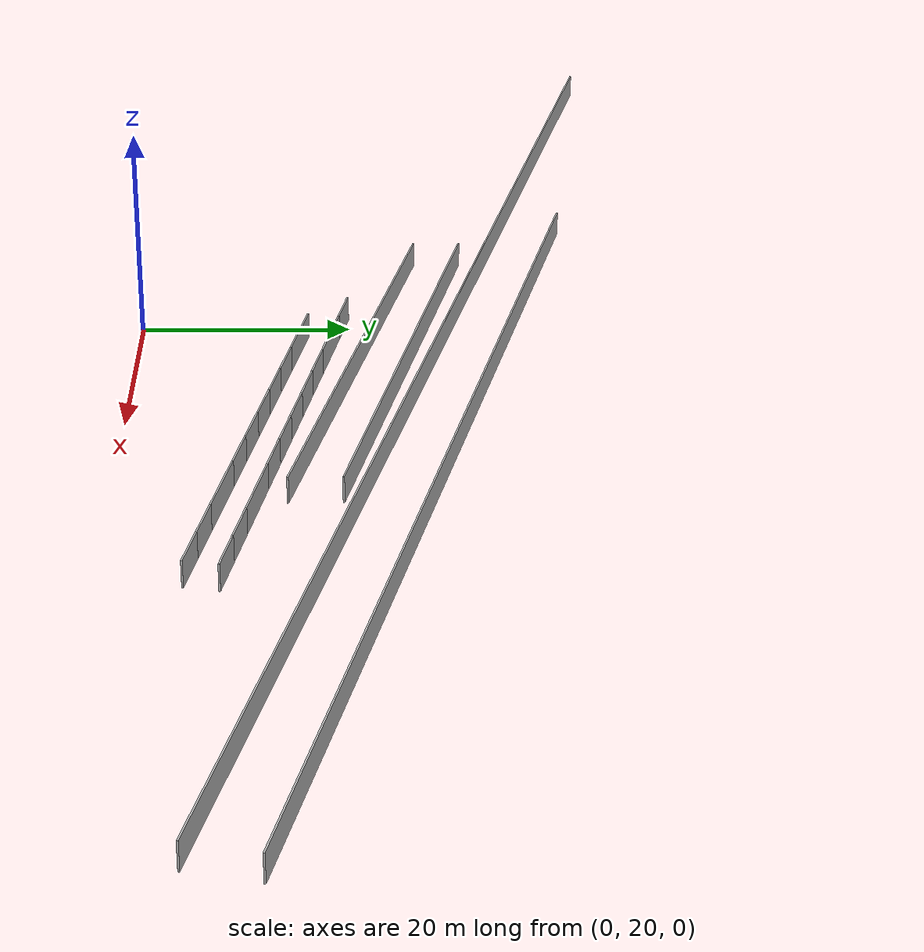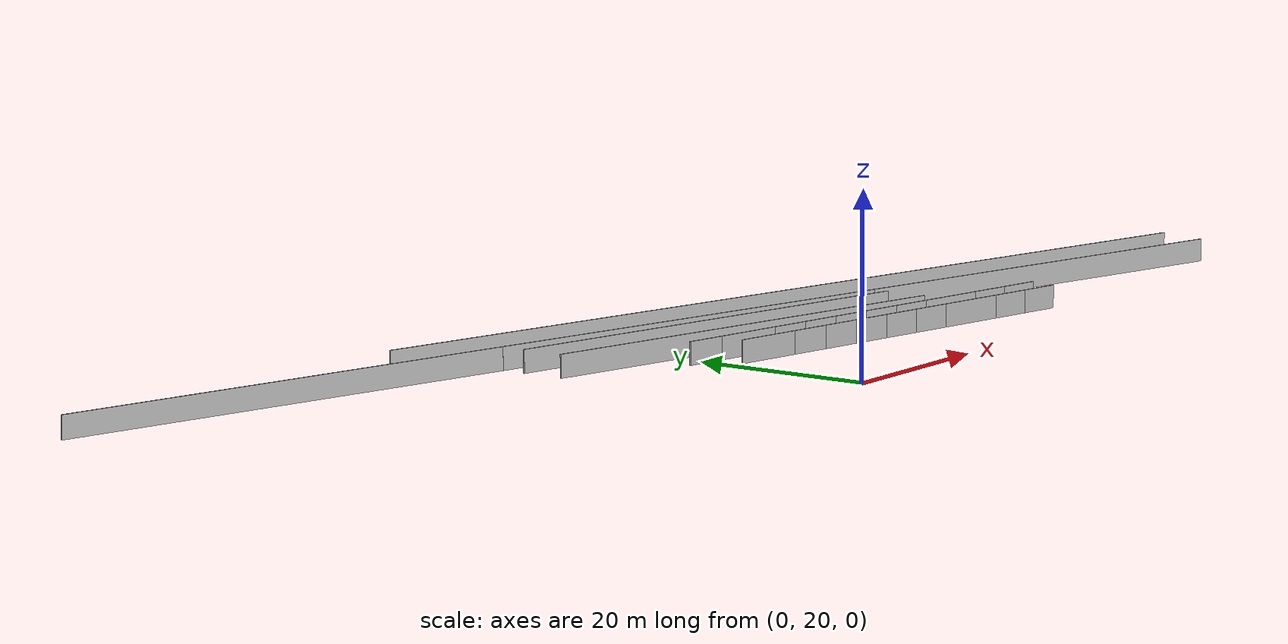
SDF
<?xml version="1.0" ?>
<sdf version="1.6">
  <model name="sps_1105">
    <pose frame="">0 0 0 0 -0 0</pose>
    <static>1</static>
    <self_collide>0</self_collide>
    <allow_auto_disable>0</allow_auto_disable>
    <link name="Wall105">
      <kinematic>0</kinematic>
      <gravity>1</gravity>
      <self_collide>0</self_collide>
      <collision name="collision">
        <geometry>
          <box>
            <size>51.5639 0.15 2.5</size>
          </box>
        </geometry>
        <pose frame="">0 0 0 0 -0 0</pose>
      </collision>
      <visual name="visual">
        <geometry>
          <box>
            <size>51.5639 0.15 2.5</size>
          </box>
        </geometry>
        <pose frame="">0 0 0 0 -0 0</pose>
        <cast_shadows>1</cast_shadows>
        <transparency>0.0</transparency>
      </visual>
      <pose frame="">9.46944 47.6651 1.25 0 0 -0.246916</pose>
    </link>
    <link name="Wall341">
      <kinematic>0</kinematic>
      <gravity>1</gravity>
      <self_collide>0</self_collide>
      <collision name="collision">
        <geometry>
          <box>
            <size>51.3314 0.15 2.5</size>
          </box>
        </geometry>
        <pose frame="">0 0 0 0 -0 0</pose>
      </collision>
      <visual name="visual">
        <geometry>
          <box>
            <size>51.3314 0.15 2.5</size>
          </box>
        </geometry>
        <pose frame="">0 0 0 0 -0 0</pose>
        <cast_shadows>1</cast_shadows>
        <transparency>0.0</transparency>
      </visual>
      <pose frame="">9.46944 45.4483 1.25 0 -0 2.91334</pose>
    </link>
    <link name="Wall514">
      <kinematic>0</kinematic>
      <gravity>1</gravity>
      <self_collide>0</self_collide>
      <collision name="collision">
        <geometry>
          <box>
            <size>51.3386 0.15 2.5</size>
          </box>
        </geometry>
        <pose frame="">0 0 0 0 -0 0</pose>
      </collision>
      <visual name="visual">
        <geometry>
          <box>
            <size>51.3386 0.15 2.5</size>
          </box>
        </geometry>
        <pose frame="">0 0 0 0 -0 0</pose>
        <cast_shadows>1</cast_shadows>
        <transparency>0.0</transparency>
      </visual>
      <pose frame="">9.46944 40.7798 1.25 0 -0 2.91274</pose>
    </link>
    <link name="Wall1380">
      <kinematic>0</kinematic>
      <gravity>1</gravity>
      <self_collide>0</self_collide>
      <collision name="collision">
        <geometry>
          <box>
            <size>156.523 0.15 2.5</size>
          </box>
        </geometry>
        <pose frame="">0 0 0 0 -0 0</pose>
      </collision>
      <visual name="visual">
        <geometry>
          <box>
            <size>156.523 0.15 2.5</size>
          </box>
        </geometry>
        <pose frame="">0 0 0 0 -0 0</pose>
        <cast_shadows>1</cast_shadows>
        <transparency>0.0</transparency>
      </visual>
      <pose frame="">6.84756 48.3261 1.25 0 -0 2.89468</pose>
    </link>
    <link name="Wall1391">
      <kinematic>0</kinematic>
      <gravity>1</gravity>
      <self_collide>0</self_collide>
      <collision name="collision">
        <geometry>
          <box>
            <size>111.247 0.15 2.5</size>
          </box>
        </geometry>
        <pose frame="">0 0 0 0 -0 0</pose>
      </collision>
      <visual name="visual">
        <geometry>
          <box>
            <size>111.247 0.15 2.5</size>
          </box>
        </geometry>
        <pose frame="">0 0 0 0 -0 0</pose>
        <cast_shadows>1</cast_shadows>
        <transparency>0.0</transparency>
      </visual>
      <pose frame="">30.1177 48.4644 1.25 0 0 -0.248186</pose>
    </link>
    <link name="Wall2676">
      <kinematic>0</kinematic>
      <gravity>1</gravity>
      <self_collide>0</self_collide>
      <collision name="collision">
        <geometry>
          <box>
            <size>7.6645 0.15 2.5</size>
          </box>
        </geometry>
        <pose frame="">0 0 0 0 -0 0</pose>
      </collision>
      <visual name="visual">
        <geometry>
          <box>
            <size>7.6645 0.15 2.5</size>
          </box>
        </geometry>
        <pose frame="">0 0 0 0 -0 0</pose>
        <cast_shadows>1</cast_shadows>
        <transparency>0.0</transparency>
      </visual>
      <pose frame="">5.50805 35.3221 1.25 0 0 -0.192612</pose>
    </link>
    <link name="Wall2677">
      <kinematic>0</kinematic>
      <gravity>1</gravity>
      <self_collide>0</self_collide>
      <collision name="collision">
        <geometry>
          <box>
            <size>4.5263 0.15 2.5</size>
          </box>
        </geometry>
        <pose frame="">0 0 0 0 -0 0</pose>
      </collision>
      <visual name="visual">
        <geometry>
          <box>
            <size>4.5263 0.15 2.5</size>
          </box>
        </geometry>
        <pose frame="">0 0 0 0 -0 0</pose>
        <cast_shadows>1</cast_shadows>
        <transparency>0.0</transparency>
      </visual>
      <pose frame="">11.4907 34.1549 1.25 0 0 -0.192794</pose>
    </link>
    <link name="Wall2678">
      <kinematic>0</kinematic>
      <gravity>1</gravity>
      <self_collide>0</self_collide>
      <collision name="collision">
        <geometry>
          <box>
            <size>4.52507 0.15 2.5</size>
          </box>
        </geometry>
        <pose frame="">0 0 0 0 -0 0</pose>
      </collision>
      <visual name="visual">
        <geometry>
          <box>
            <size>4.52507 0.15 2.5</size>
          </box>
        </geometry>
        <pose frame="">0 0 0 0 -0 0</pose>
        <cast_shadows>1</cast_shadows>
        <transparency>0.0</transparency>
      </visual>
      <pose frame="">15.9325 33.2876 1.25 0 0 -0.192875</pose>
    </link>
    <link name="Wall2679">
      <kinematic>0</kinematic>
      <gravity>1</gravity>
      <self_collide>0</self_collide>
      <collision name="collision">
        <geometry>
          <box>
            <size>4.52514 0.15 2.5</size>
          </box>
        </geometry>
        <pose frame="">0 0 0 0 -0 0</pose>
      </collision>
      <visual name="visual">
        <geometry>
          <box>
            <size>4.52514 0.15 2.5</size>
          </box>
        </geometry>
        <pose frame="">0 0 0 0 -0 0</pose>
        <cast_shadows>1</cast_shadows>
        <transparency>0.0</transparency>
      </visual>
      <pose frame="">20.3736 32.4202 1.25 0 0 -0.192885</pose>
    </link>
    <link name="Wall2680">
      <kinematic>0</kinematic>
      <gravity>1</gravity>
      <self_collide>0</self_collide>
      <collision name="collision">
        <geometry>
          <box>
            <size>4.5275 0.15 2.5</size>
          </box>
        </geometry>
        <pose frame="">0 0 0 0 -0 0</pose>
      </collision>
      <visual name="visual">
        <geometry>
          <box>
            <size>4.5275 0.15 2.5</size>
          </box>
        </geometry>
        <pose frame="">0 0 0 0 -0 0</pose>
        <cast_shadows>1</cast_shadows>
        <transparency>0.0</transparency>
      </visual>
      <pose frame="">24.8161 31.5527 1.25 0 0 -0.192811</pose>
    </link>
    <link name="Wall2681">
      <kinematic>0</kinematic>
      <gravity>1</gravity>
      <self_collide>0</self_collide>
      <collision name="collision">
        <geometry>
          <box>
            <size>4.52485 0.15 2.5</size>
          </box>
        </geometry>
        <pose frame="">0 0 0 0 -0 0</pose>
      </collision>
      <visual name="visual">
        <geometry>
          <box>
            <size>4.52485 0.15 2.5</size>
          </box>
        </geometry>
        <pose frame="">0 0 0 0 -0 0</pose>
        <cast_shadows>1</cast_shadows>
        <transparency>0.0</transparency>
      </visual>
      <pose frame="">29.2584 30.6858 1.25 0 0 -0.192623</pose>
    </link>
    <link name="Wall2682">
      <kinematic>0</kinematic>
      <gravity>1</gravity>
      <self_collide>0</self_collide>
      <collision name="collision">
        <geometry>
          <box>
            <size>7.66081 0.15 2.5</size>
          </box>
        </geometry>
        <pose frame="">0 0 0 0 -0 0</pose>
      </collision>
      <visual name="visual">
        <geometry>
          <box>
            <size>7.66081 0.15 2.5</size>
          </box>
        </geometry>
        <pose frame="">0 0 0 0 -0 0</pose>
        <cast_shadows>1</cast_shadows>
        <transparency>0.0</transparency>
      </visual>
      <pose frame="">35.2385 29.5192 1.25 0 0 -0.192681</pose>
    </link>
    <link name="Wall2683">
      <kinematic>0</kinematic>
      <gravity>1</gravity>
      <self_collide>0</self_collide>
      <collision name="collision">
        <geometry>
          <box>
            <size>4.52422 0.15 2.5</size>
          </box>
        </geometry>
        <pose frame="">0 0 0 0 -0 0</pose>
      </collision>
      <visual name="visual">
        <geometry>
          <box>
            <size>4.52422 0.15 2.5</size>
          </box>
        </geometry>
        <pose frame="">0 0 0 0 -0 0</pose>
        <cast_shadows>1</cast_shadows>
        <transparency>0.0</transparency>
      </visual>
      <pose frame="">41.2183 28.3522 1.25 0 0 -0.192829</pose>
    </link>
    <link name="Wall2684">
      <kinematic>0</kinematic>
      <gravity>1</gravity>
      <self_collide>0</self_collide>
      <collision name="collision">
        <geometry>
          <box>
            <size>4.52177 0.15 2.5</size>
          </box>
        </geometry>
        <pose frame="">0 0 0 0 -0 0</pose>
      </collision>
      <visual name="visual">
        <geometry>
          <box>
            <size>4.52177 0.15 2.5</size>
          </box>
        </geometry>
        <pose frame="">0 0 0 0 -0 0</pose>
        <cast_shadows>1</cast_shadows>
        <transparency>0.0</transparency>
      </visual>
      <pose frame="">45.6574 27.4855 1.25 0 0 -0.192797</pose>
    </link>
    <link name="Wall3518">
      <kinematic>0</kinematic>
      <gravity>1</gravity>
      <self_collide>0</self_collide>
      <collision name="collision">
        <geometry>
          <box>
            <size>4.52681 0.15 2.5</size>
          </box>
        </geometry>
        <pose frame="">0 0 0 0 -0 0</pose>
      </collision>
      <visual name="visual">
        <geometry>
          <box>
            <size>4.52681 0.15 2.5</size>
          </box>
        </geometry>
        <pose frame="">0 0 0 0 -0 0</pose>
        <cast_shadows>1</cast_shadows>
        <transparency>0.0</transparency>
      </visual>
      <pose frame="">0.100059 39.4345 1.25 0 0 -0.193019</pose>
    </link>
    <link name="Wall3519">
      <kinematic>0</kinematic>
      <gravity>1</gravity>
      <self_collide>0</self_collide>
      <collision name="collision">
        <geometry>
          <box>
            <size>7.66439 0.15 2.5</size>
          </box>
        </geometry>
        <pose frame="">0 0 0 0 -0 0</pose>
      </collision>
      <visual name="visual">
        <geometry>
          <box>
            <size>7.66439 0.15 2.5</size>
          </box>
        </geometry>
        <pose frame="">0 0 0 0 -0 0</pose>
        <cast_shadows>1</cast_shadows>
        <transparency>0.0</transparency>
      </visual>
      <pose frame="">6.08276 38.2667 1.25 0 0 -0.192623</pose>
    </link>
    <link name="Wall3520">
      <kinematic>0</kinematic>
      <gravity>1</gravity>
      <self_collide>0</self_collide>
      <collision name="collision">
        <geometry>
          <box>
            <size>4.52664 0.15 2.5</size>
          </box>
        </geometry>
        <pose frame="">0 0 0 0 -0 0</pose>
      </collision>
      <visual name="visual">
        <geometry>
          <box>
            <size>4.52664 0.15 2.5</size>
          </box>
        </geometry>
        <pose frame="">0 0 0 0 -0 0</pose>
        <cast_shadows>1</cast_shadows>
        <transparency>0.0</transparency>
      </visual>
      <pose frame="">12.0655 37.0994 1.25 0 0 -0.192821</pose>
    </link>
    <link name="Wall3521">
      <kinematic>0</kinematic>
      <gravity>1</gravity>
      <self_collide>0</self_collide>
      <collision name="collision">
        <geometry>
          <box>
            <size>4.52513 0.15 2.5</size>
          </box>
        </geometry>
        <pose frame="">0 0 0 0 -0 0</pose>
      </collision>
      <visual name="visual">
        <geometry>
          <box>
            <size>4.52513 0.15 2.5</size>
          </box>
        </geometry>
        <pose frame="">0 0 0 0 -0 0</pose>
        <cast_shadows>1</cast_shadows>
        <transparency>0.0</transparency>
      </visual>
      <pose frame="">16.5074 36.232 1.25 0 0 -0.192872</pose>
    </link>
    <link name="Wall3522">
      <kinematic>0</kinematic>
      <gravity>1</gravity>
      <self_collide>0</self_collide>
      <collision name="collision">
        <geometry>
          <box>
            <size>4.52509 0.15 2.5</size>
          </box>
        </geometry>
        <pose frame="">0 0 0 0 -0 0</pose>
      </collision>
      <visual name="visual">
        <geometry>
          <box>
            <size>4.52509 0.15 2.5</size>
          </box>
        </geometry>
        <pose frame="">0 0 0 0 -0 0</pose>
        <cast_shadows>1</cast_shadows>
        <transparency>0.0</transparency>
      </visual>
      <pose frame="">20.9487 35.3647 1.25 0 0 -0.192832</pose>
    </link>
    <link name="Wall3523">
      <kinematic>0</kinematic>
      <gravity>1</gravity>
      <self_collide>0</self_collide>
      <collision name="collision">
        <geometry>
          <box>
            <size>4.52731 0.15 2.5</size>
          </box>
        </geometry>
        <pose frame="">0 0 0 0 -0 0</pose>
      </collision>
      <visual name="visual">
        <geometry>
          <box>
            <size>4.52731 0.15 2.5</size>
          </box>
        </geometry>
        <pose frame="">0 0 0 0 -0 0</pose>
        <cast_shadows>1</cast_shadows>
        <transparency>0.0</transparency>
      </visual>
      <pose frame="">25.391 34.4972 1.25 0 0 -0.192874</pose>
    </link>
    <link name="Wall3524">
      <kinematic>0</kinematic>
      <gravity>1</gravity>
      <self_collide>0</self_collide>
      <collision name="collision">
        <geometry>
          <box>
            <size>4.52445 0.15 2.5</size>
          </box>
        </geometry>
        <pose frame="">0 0 0 0 -0 0</pose>
      </collision>
      <visual name="visual">
        <geometry>
          <box>
            <size>4.52445 0.15 2.5</size>
          </box>
        </geometry>
        <pose frame="">0 0 0 0 -0 0</pose>
        <cast_shadows>1</cast_shadows>
        <transparency>0.0</transparency>
      </visual>
      <pose frame="">29.833 33.6303 1.25 0 0 -0.192599</pose>
    </link>
    <link name="Wall3525">
      <kinematic>0</kinematic>
      <gravity>1</gravity>
      <self_collide>0</self_collide>
      <collision name="collision">
        <geometry>
          <box>
            <size>7.66103 0.15 2.5</size>
          </box>
        </geometry>
        <pose frame="">0 0 0 0 -0 0</pose>
      </collision>
      <visual name="visual">
        <geometry>
          <box>
            <size>7.66103 0.15 2.5</size>
          </box>
        </geometry>
        <pose frame="">0 0 0 0 -0 0</pose>
        <cast_shadows>1</cast_shadows>
        <transparency>0.0</transparency>
      </visual>
      <pose frame="">35.813 32.4637 1.25 0 0 -0.1927</pose>
    </link>
    <link name="Wall3526">
      <kinematic>0</kinematic>
      <gravity>1</gravity>
      <self_collide>0</self_collide>
      <collision name="collision">
        <geometry>
          <box>
            <size>4.52442 0.15 2.5</size>
          </box>
        </geometry>
        <pose frame="">0 0 0 0 -0 0</pose>
      </collision>
      <visual name="visual">
        <geometry>
          <box>
            <size>4.52442 0.15 2.5</size>
          </box>
        </geometry>
        <pose frame="">0 0 0 0 -0 0</pose>
        <cast_shadows>1</cast_shadows>
        <transparency>0.0</transparency>
      </visual>
      <pose frame="">41.793 31.2967 1.25 0 0 -0.192779</pose>
    </link>
    <link name="Wall3527">
      <kinematic>0</kinematic>
      <gravity>1</gravity>
      <self_collide>0</self_collide>
      <collision name="collision">
        <geometry>
          <box>
            <size>4.52198 0.15 2.5</size>
          </box>
        </geometry>
        <pose frame="">0 0 0 0 -0 0</pose>
      </collision>
      <visual name="visual">
        <geometry>
          <box>
            <size>4.52198 0.15 2.5</size>
          </box>
        </geometry>
        <pose frame="">0 0 0 0 -0 0</pose>
        <cast_shadows>1</cast_shadows>
        <transparency>0.0</transparency>
      </visual>
      <pose frame="">46.2324 30.43 1.25 0 0 -0.192829</pose>
    </link>
  </model>
</sdf>
